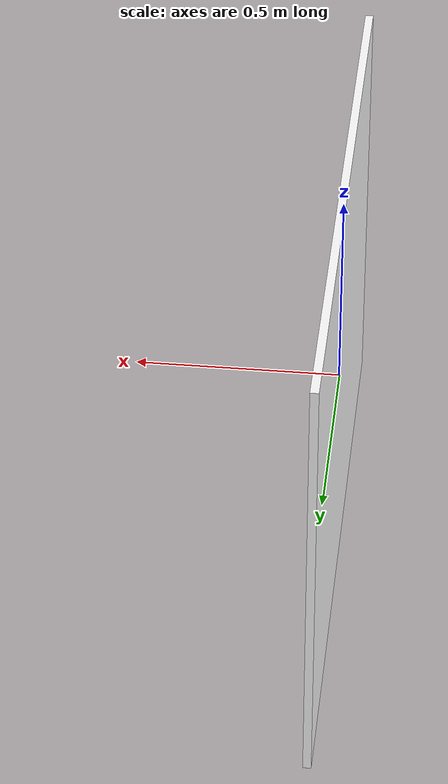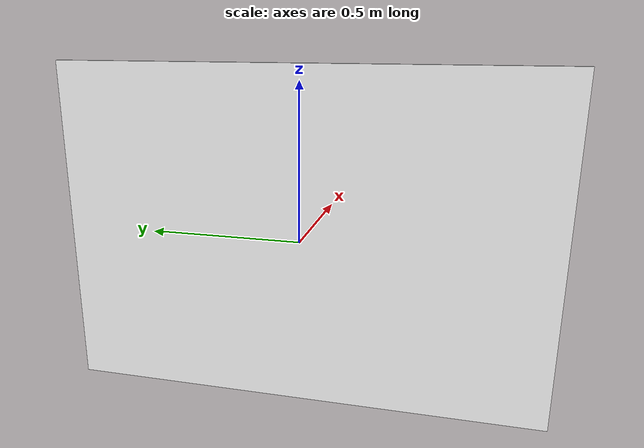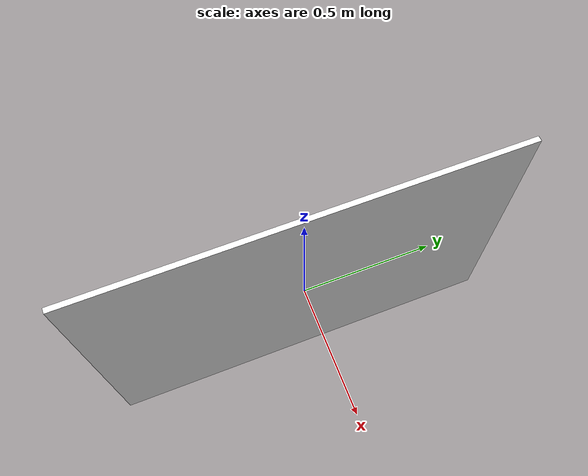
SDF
<?xml version="1.0" ?>
<sdf version="1.8">
  <model name="aruco_target">
    <static>true</static>

    <link name="target_link">
      <visual name="target_visual">
        <geometry>
          <box>
            <size>0.02 1.60 1.10</size>
          </box>
        </geometry>

        <material>
          <ambient>1 1 1 1</ambient>
          <diffuse>1 1 1 1</diffuse>
          <specular>0.1 0.1 0.1 1</specular>
          <pbr>
            <metal>
              <albedo_map>model://aruco_target/materials/textures/aruco_board.png</albedo_map>
              <roughness>0.8</roughness>
              <metalness>0.0</metalness>
            </metal>
          </pbr>
        </material>
      </visual>

      <collision name="target_collision">
        <geometry>
          <box>
            <size>0.02 1.60 1.10</size>
          </box>
        </geometry>
      </collision>
    </link>
  </model>
</sdf>
